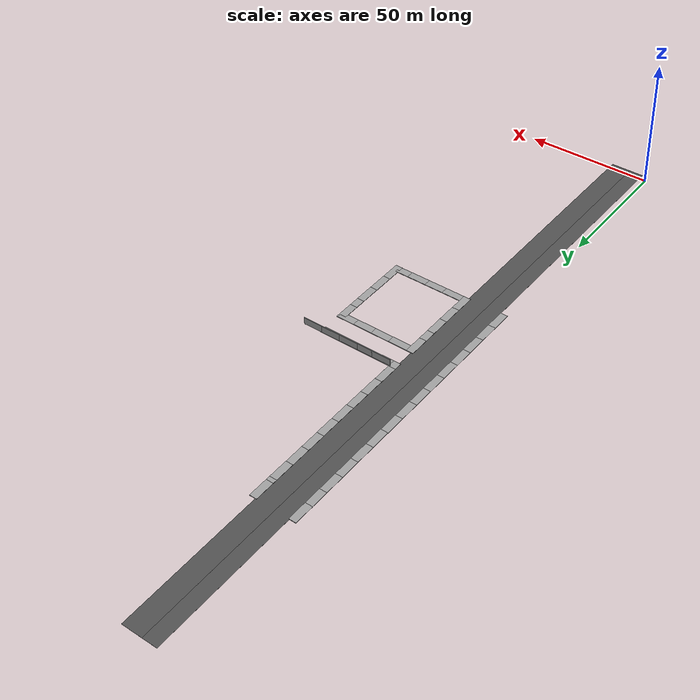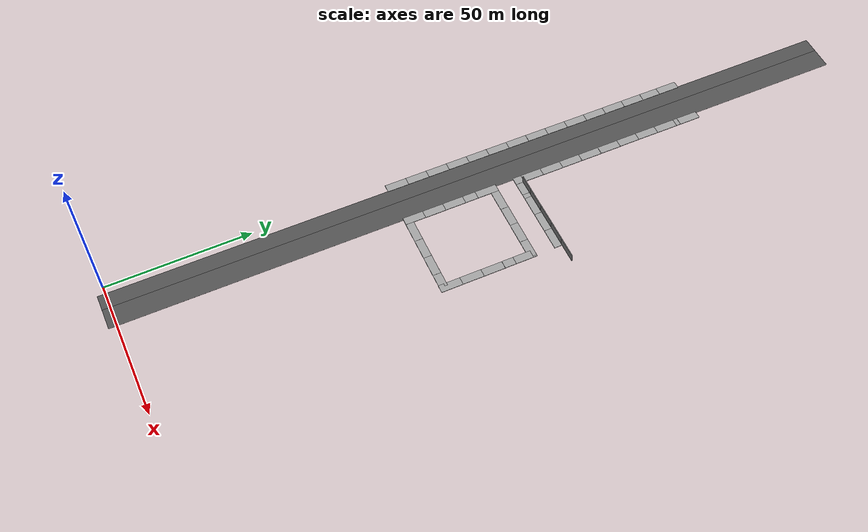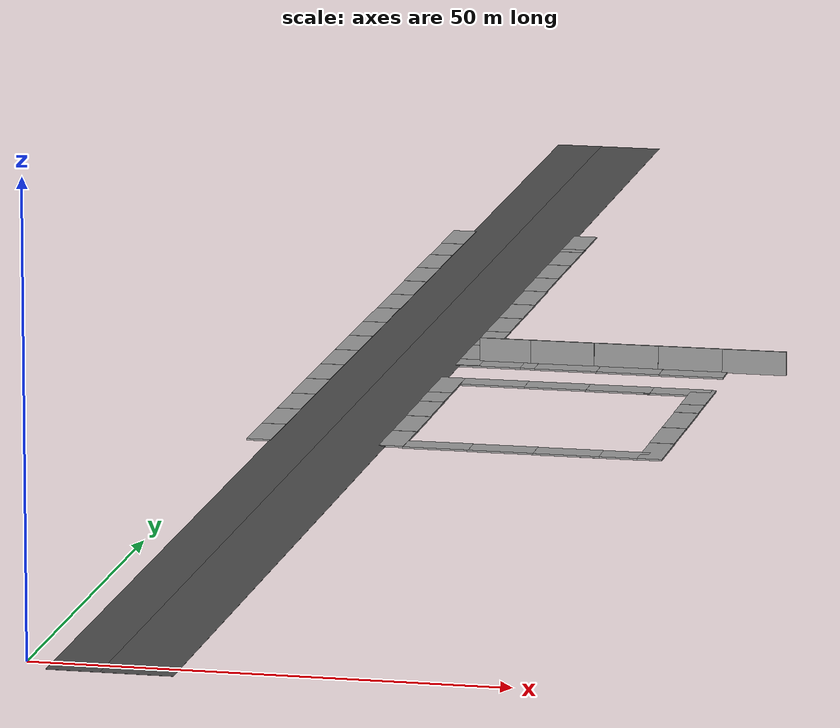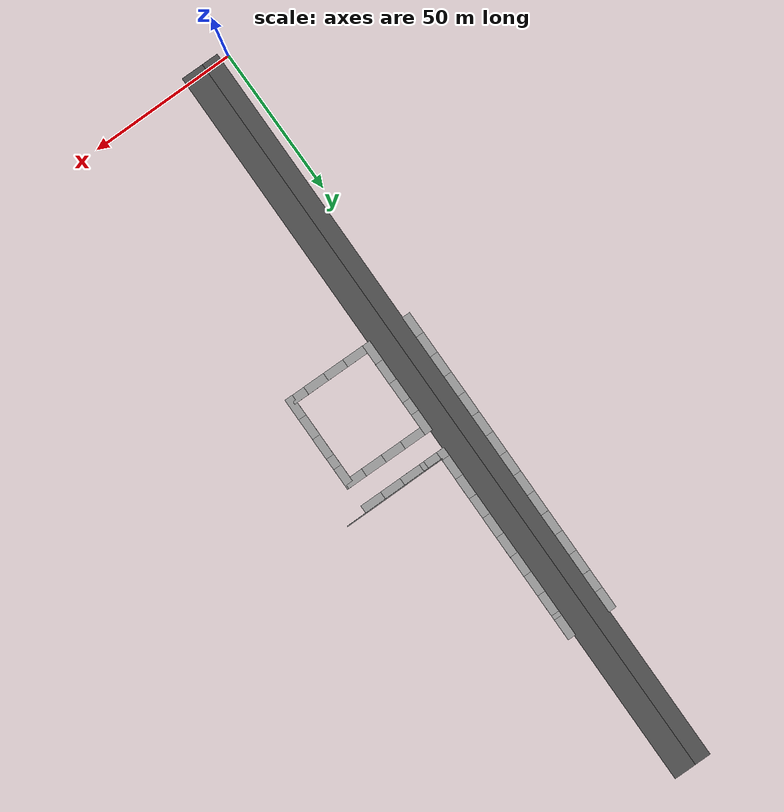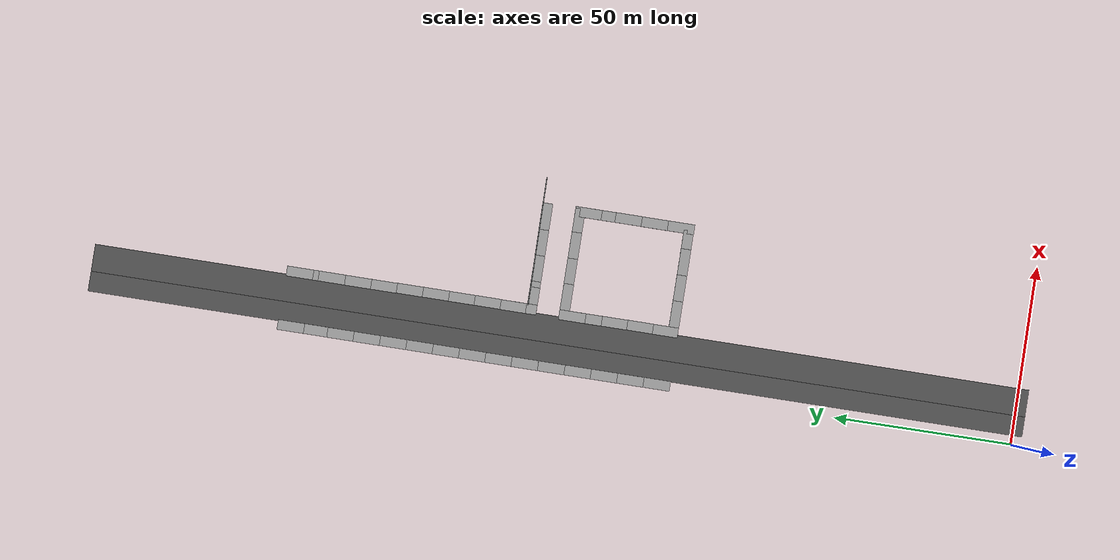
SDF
<sdf version="1.6">
 <world name="default">
  <model name="grey_wall_clone_clone_9_clone_11">
   <static>1</static>
   <link name="link">
    <pose>0 0 1.4 0 -0 0</pose>
    <collision name="collision"><geometry><box><size>7.5 0.2 2.8</size></box></geometry></collision>
    <visual name="visual">
     <cast_shadows>0</cast_shadows>
     <geometry><box><size>7.5 0.2 2.8</size></box></geometry>
     <material>
      <script>
       <uri>model://grey_wall/materials/scripts</uri>
       <uri>model://grey_wall/materials/textures</uri>
       <name>vrc/grey_wall</name>
      </script>
     </material>
    </visual>
   </link>
   <pose>3.34177 100.585 -0.016993 -1.57343 0.001892 1.56332</pose>
  </model>
  <model name="grey_wall_clone_clone_9_clone_12">
   <static>1</static>
   <link name="link">
    <pose>0 0 1.4 0 -0 0</pose>
    <collision name="collision"><geometry><box><size>7.5 0.2 2.8</size></box></geometry></collision>
    <visual name="visual">
     <cast_shadows>0</cast_shadows>
     <geometry><box><size>7.5 0.2 2.8</size></box></geometry>
     <material>
      <script>
       <uri>model://grey_wall/materials/scripts</uri>
       <uri>model://grey_wall/materials/textures</uri>
       <name>vrc/grey_wall</name>
      </script>
     </material>
    </visual>
   </link>
   <pose>3.37904 108.071 -0.016993 -1.57343 0.001892 1.56332</pose>
  </model>
  <model name="grey_wall_clone_clone_9_clone_13">
   <static>1</static>
   <link name="link">
    <pose>0 0 1.4 0 -0 0</pose>
    <collision name="collision"><geometry><box><size>7.5 0.2 2.8</size></box></geometry></collision>
    <visual name="visual">
     <cast_shadows>0</cast_shadows>
     <geometry><box><size>7.5 0.2 2.8</size></box></geometry>
     <material>
      <script>
       <uri>model://grey_wall/materials/scripts</uri>
       <uri>model://grey_wall/materials/textures</uri>
       <name>vrc/grey_wall</name>
      </script>
     </material>
    </visual>
   </link>
   <pose>3.43038 115.536 -0.016993 -1.57343 0.001892 1.56332</pose>
  </model>
  <model name="grey_wall_clone_clone_9_clone_14">
   <static>1</static>
   <link name="link">
    <pose>0 0 1.4 0 -0 0</pose>
    <collision name="collision"><geometry><box><size>7.5 0.2 2.8</size></box></geometry></collision>
    <visual name="visual">
     <cast_shadows>0</cast_shadows>
     <geometry><box><size>7.5 0.2 2.8</size></box></geometry>
     <material>
      <script>
       <uri>model://grey_wall/materials/scripts</uri>
       <uri>model://grey_wall/materials/textures</uri>
       <name>vrc/grey_wall</name>
      </script>
     </material>
    </visual>
   </link>
   <pose>3.47192 123.01 -0.016993 -1.57343 0.001892 1.56332</pose>
  </model>
  <model name="grey_wall_clone_clone_9_clone_15">
   <static>1</static>
   <link name="link">
    <pose>0 0 1.4 0 -0 0</pose>
    <collision name="collision"><geometry><box><size>7.5 0.2 2.8</size></box></geometry></collision>
    <visual name="visual">
     <cast_shadows>0</cast_shadows>
     <geometry><box><size>7.5 0.2 2.8</size></box></geometry>
     <material>
      <script>
       <uri>model://grey_wall/materials/scripts</uri>
       <uri>model://grey_wall/materials/textures</uri>
       <name>vrc/grey_wall</name>
      </script>
     </material>
    </visual>
   </link>
   <pose>3.51541 130.459 -0.016993 -1.57343 0.001892 1.56332</pose>
  </model>
  <model name="grey_wall_clone_clone_9_clone_16">
   <static>1</static>
   <link name="link">
    <pose>0 0 1.4 0 -0 0</pose>
    <collision name="collision"><geometry><box><size>7.5 0.2 2.8</size></box></geometry></collision>
    <visual name="visual">
     <cast_shadows>0</cast_shadows>
     <geometry><box><size>7.5 0.2 2.8</size></box></geometry>
     <material>
      <script>
       <uri>model://grey_wall/materials/scripts</uri>
       <uri>model://grey_wall/materials/textures</uri>
       <name>vrc/grey_wall</name>
      </script>
     </material>
    </visual>
   </link>
   <pose>3.58315 137.961 -0.016993 -1.57343 0.001892 1.56332</pose>
  </model>
  <model name="grey_wall_clone_clone_9_clone_17">
   <static>1</static>
   <link name="link">
    <pose>0 0 1.4 0 -0 0</pose>
    <collision name="collision"><geometry><box><size>7.5 0.2 2.8</size></box></geometry></collision>
    <visual name="visual">
     <cast_shadows>0</cast_shadows>
     <geometry><box><size>7.5 0.2 2.8</size></box></geometry>
     <material>
      <script>
       <uri>model://grey_wall/materials/scripts</uri>
       <uri>model://grey_wall/materials/textures</uri>
       <name>vrc/grey_wall</name>
      </script>
     </material>
    </visual>
   </link>
   <pose>3.64485 145.448 -0.016993 -1.57343 0.001892 1.56332</pose>
  </model>
  <model name="grey_wall_clone_clone_9_clone_18">
   <static>1</static>
   <link name="link">
    <pose>0 0 1.4 0 -0 0</pose>
    <collision name="collision"><geometry><box><size>7.5 0.2 2.8</size></box></geometry></collision>
    <visual name="visual">
     <cast_shadows>0</cast_shadows>
     <geometry><box><size>7.5 0.2 2.8</size></box></geometry>
     <material>
      <script>
       <uri>model://grey_wall/materials/scripts</uri>
       <uri>model://grey_wall/materials/textures</uri>
       <name>vrc/grey_wall</name>
      </script>
     </material>
    </visual>
   </link>
   <pose>3.71423 152.905 -0.016993 -1.57343 0.001892 1.56332</pose>
  </model>
  <model name="grey_wall_clone_clone_9_clone_19">
   <static>1</static>
   <link name="link">
    <pose>0 0 1.4 0 -0 0</pose>
    <collision name="collision"><geometry><box><size>7.5 0.2 2.8</size></box></geometry></collision>
    <visual name="visual">
     <cast_shadows>0</cast_shadows>
     <geometry><box><size>7.5 0.2 2.8</size></box></geometry>
     <material>
      <script>
       <uri>model://grey_wall/materials/scripts</uri>
       <uri>model://grey_wall/materials/textures</uri>
       <name>vrc/grey_wall</name>
      </script>
     </material>
    </visual>
   </link>
   <pose>3.78725 160.34 -0.016993 -1.57343 0.001892 1.56332</pose>
  </model>
  <model name="grey_wall_clone_clone_9_clone_20">
   <static>1</static>
   <link name="link">
    <pose>0 0 1.4 0 -0 0</pose>
    <collision name="collision"><geometry><box><size>7.5 0.2 2.8</size></box></geometry></collision>
    <visual name="visual">
     <cast_shadows>0</cast_shadows>
     <geometry><box><size>7.5 0.2 2.8</size></box></geometry>
     <material>
      <script>
       <uri>model://grey_wall/materials/scripts</uri>
       <uri>model://grey_wall/materials/textures</uri>
       <name>vrc/grey_wall</name>
      </script>
     </material>
    </visual>
   </link>
   <pose>3.87527 167.804 -0.016993 -1.57343 0.001892 1.56332</pose>
  </model>
  <model name="grey_wall_clone_clone_9_clone_21">
   <static>1</static>
   <link name="link">
    <pose>0 0 1.4 0 -0 0</pose>
    <collision name="collision"><geometry><box><size>7.5 0.2 2.8</size></box></geometry></collision>
    <visual name="visual">
     <cast_shadows>0</cast_shadows>
     <geometry><box><size>7.5 0.2 2.8</size></box></geometry>
     <material>
      <script>
       <uri>model://grey_wall/materials/scripts</uri>
       <uri>model://grey_wall/materials/textures</uri>
       <name>vrc/grey_wall</name>
      </script>
     </material>
    </visual>
   </link>
   <pose>3.93042 175.282 -0.016993 -1.57343 0.001892 1.56332</pose>
  </model>
  <model name="grey_wall_clone_clone_9_clone_22">
   <static>1</static>
   <link name="link">
    <pose>0 0 1.4 0 -0 0</pose>
    <collision name="collision"><geometry><box><size>7.5 0.2 2.8</size></box></geometry></collision>
    <visual name="visual">
     <cast_shadows>0</cast_shadows>
     <geometry><box><size>7.5 0.2 2.8</size></box></geometry>
     <material>
      <script>
       <uri>model://grey_wall/materials/scripts</uri>
       <uri>model://grey_wall/materials/textures</uri>
       <name>vrc/grey_wall</name>
      </script>
     </material>
    </visual>
   </link>
   <pose>3.96067 182.755 -0.016993 -1.57343 0.001892 1.56332</pose>
  </model>
  <model name="grey_wall_clone_clone_9_clone_23">
   <static>1</static>
   <link name="link">
    <pose>0 0 1.4 0 -0 0</pose>
    <collision name="collision"><geometry><box><size>7.5 0.2 2.8</size></box></geometry></collision>
    <visual name="visual">
     <cast_shadows>0</cast_shadows>
     <geometry><box><size>7.5 0.2 2.8</size></box></geometry>
     <material>
      <script>
       <uri>model://grey_wall/materials/scripts</uri>
       <uri>model://grey_wall/materials/textures</uri>
       <name>vrc/grey_wall</name>
      </script>
     </material>
    </visual>
   </link>
   <pose>4.02602 190.245 -0.016993 -1.57343 0.001892 1.56332</pose>
  </model>
  <model name="grey_wall_clone_clone_9_clone_24">
   <static>1</static>
   <link name="link">
    <pose>0 0 1.4 0 -0 0</pose>
    <collision name="collision"><geometry><box><size>7.5 0.2 2.8</size></box></geometry></collision>
    <visual name="visual">
     <cast_shadows>0</cast_shadows>
     <geometry><box><size>7.5 0.2 2.8</size></box></geometry>
     <material>
      <script>
       <uri>model://grey_wall/materials/scripts</uri>
       <uri>model://grey_wall/materials/textures</uri>
       <name>vrc/grey_wall</name>
      </script>
     </material>
    </visual>
   </link>
   <pose>4.10089 197.661 -0.016993 -1.57343 0.001892 1.56332</pose>
  </model>
  <model name="grey_wall_clone_clone_9_clone_25">
   <static>1</static>
   <link name="link">
    <pose>0 0 1.4 0 -0 0</pose>
    <collision name="collision"><geometry><box><size>7.5 0.2 2.8</size></box></geometry></collision>
    <visual name="visual">
     <cast_shadows>0</cast_shadows>
     <geometry><box><size>7.5 0.2 2.8</size></box></geometry>
     <material>
      <script>
       <uri>model://grey_wall/materials/scripts</uri>
       <uri>model://grey_wall/materials/textures</uri>
       <name>vrc/grey_wall</name>
      </script>
     </material>
    </visual>
   </link>
   <pose>4.13179 204.265 -0.016993 -1.57343 0.001892 1.56332</pose>
  </model>
  <model name="grey_wall_clone_clone_9_clone_26_clone_0_clone_2_clone_4_clone_2_clone">
   <static>1</static>
   <link name="link">
    <pose>0 0 1.4 0 -0 0</pose>
    <collision name="collision"><geometry><box><size>7.5 0.2 2.8</size></box></geometry></collision>
    <visual name="visual">
     <cast_shadows>0</cast_shadows>
     <geometry><box><size>7.5 0.2 2.8</size></box></geometry>
     <material>
      <script>
       <uri>model://grey_wall/materials/scripts</uri>
       <uri>model://grey_wall/materials/textures</uri>
       <name>vrc/grey_wall</name>
      </script>
     </material>
    </visual>
   </link>
   <pose>18.4366 100.578 -0.01749 -1.57343 0.001892 1.56332</pose>
  </model>
  <model name="grey_wall_clone_clone_9_clone_26_clone_0_clone_2_clone_4_clone_2_clone_0">
   <static>1</static>
   <link name="link">
    <pose>0 0 1.4 0 -0 0</pose>
    <collision name="collision"><geometry><box><size>7.5 0.2 2.8</size></box></geometry></collision>
    <visual name="visual">
     <cast_shadows>0</cast_shadows>
     <geometry><box><size>7.5 0.2 2.8</size></box></geometry>
     <material>
      <script>
       <uri>model://grey_wall/materials/scripts</uri>
       <uri>model://grey_wall/materials/textures</uri>
       <name>vrc/grey_wall</name>
      </script>
     </material>
    </visual>
   </link>
   <pose>18.5191 107.656 -0.017166 -1.57343 0.001892 1.56332</pose>
  </model>
  <model name="grey_wall_clone_clone_9_clone_26_clone_0_clone_2_clone_4_clone_2_clone_1">
   <static>1</static>
   <link name="link">
    <pose>0 0 1.4 0 -0 0</pose>
    <collision name="collision"><geometry><box><size>7.5 0.2 2.8</size></box></geometry></collision>
    <visual name="visual">
     <cast_shadows>0</cast_shadows>
     <geometry><box><size>7.5 0.2 2.8</size></box></geometry>
     <material>
      <script>
       <uri>model://grey_wall/materials/scripts</uri>
       <uri>model://grey_wall/materials/textures</uri>
       <name>vrc/grey_wall</name>
      </script>
     </material>
    </visual>
   </link>
   <pose>18.5349 114.948 -0.017166 -1.57343 0.001892 1.56332</pose>
  </model>
  <model name="grey_wall_clone_clone_9_clone_26_clone_0_clone_2_clone_4_clone_2_clone_2">
   <static>1</static>
   <link name="link">
    <pose>0 0 1.4 0 -0 0</pose>
    <collision name="collision"><geometry><box><size>7.5 0.2 2.8</size></box></geometry></collision>
    <visual name="visual">
     <cast_shadows>0</cast_shadows>
     <geometry><box><size>7.5 0.2 2.8</size></box></geometry>
     <material>
      <script>
       <uri>model://grey_wall/materials/scripts</uri>
       <uri>model://grey_wall/materials/textures</uri>
       <name>vrc/grey_wall</name>
      </script>
     </material>
    </visual>
   </link>
   <pose>18.5576 122.15 -0.017166 -1.57343 0.001892 1.56332</pose>
  </model>
  <model name="grey_wall_clone_clone_9_clone_26_clone_0_clone_2_clone_4_clone_2_clone_3">
   <static>1</static>
   <link name="link">
    <pose>0 0 1.4 0 -0 0</pose>
    <collision name="collision"><geometry><box><size>7.5 0.2 2.8</size></box></geometry></collision>
    <visual name="visual">
     <cast_shadows>0</cast_shadows>
     <geometry><box><size>7.5 0.2 2.8</size></box></geometry>
     <material>
      <script>
       <uri>model://grey_wall/materials/scripts</uri>
       <uri>model://grey_wall/materials/textures</uri>
       <name>vrc/grey_wall</name>
      </script>
     </material>
    </visual>
   </link>
   <pose>18.5846 126.764 -0.017166 -1.57343 0.001892 1.56332</pose>
  </model>
  <model name="grey_wall_clone_clone_9_clone_26_clone_0_clone_2_clone_4_clone_2_clone_4">
   <static>1</static>
   <link name="link">
    <pose>0 0 1.4 0 -0 0</pose>
    <collision name="collision"><geometry><box><size>7.5 0.2 2.8</size></box></geometry></collision>
    <visual name="visual">
     <cast_shadows>0</cast_shadows>
     <geometry><box><size>7.5 0.2 2.8</size></box></geometry>
     <material>
      <script>
       <uri>model://grey_wall/materials/scripts</uri>
       <uri>model://grey_wall/materials/textures</uri>
       <name>vrc/grey_wall</name>
      </script>
     </material>
    </visual>
   </link>
   <pose>47.6978 100.297 -0.017166 -1.57343 0.001892 1.56332</pose>
  </model>
  <model name="grey_wall_clone_clone_9_clone_26_clone_0_clone_2_clone_4_clone_2_clone_5">
   <static>1</static>
   <link name="link">
    <pose>0 0 1.4 0 -0 0</pose>
    <collision name="collision"><geometry><box><size>7.5 0.2 2.8</size></box></geometry></collision>
    <visual name="visual">
     <cast_shadows>0</cast_shadows>
     <geometry><box><size>7.5 0.2 2.8</size></box></geometry>
     <material>
      <script>
       <uri>model://grey_wall/materials/scripts</uri>
       <uri>model://grey_wall/materials/textures</uri>
       <name>vrc/grey_wall</name>
      </script>
     </material>
    </visual>
   </link>
   <pose>47.7384 107.785 -0.017166 -1.57343 0.001892 1.56332</pose>
  </model>
  <model name="grey_wall_clone_clone_9_clone_26_clone_0_clone_2_clone_4_clone_2_clone_6">
   <static>1</static>
   <link name="link">
    <pose>0 0 1.4 0 -0 0</pose>
    <collision name="collision"><geometry><box><size>7.5 0.2 2.8</size></box></geometry></collision>
    <visual name="visual">
     <cast_shadows>0</cast_shadows>
     <geometry><box><size>7.5 0.2 2.8</size></box></geometry>
     <material>
      <script>
       <uri>model://grey_wall/materials/scripts</uri>
       <uri>model://grey_wall/materials/textures</uri>
       <name>vrc/grey_wall</name>
      </script>
     </material>
    </visual>
   </link>
   <pose>47.8198 115.202 -0.017166 -1.57343 0.001892 1.56332</pose>
  </model>
  <model name="grey_wall_clone_clone_9_clone_26_clone_0_clone_2_clone_4_clone_2_clone_7">
   <static>1</static>
   <link name="link">
    <pose>0 0 1.4 0 -0 0</pose>
    <collision name="collision"><geometry><box><size>7.5 0.2 2.8</size></box></geometry></collision>
    <visual name="visual">
     <cast_shadows>0</cast_shadows>
     <geometry><box><size>7.5 0.2 2.8</size></box></geometry>
     <material>
      <script>
       <uri>model://grey_wall/materials/scripts</uri>
       <uri>model://grey_wall/materials/textures</uri>
       <name>vrc/grey_wall</name>
      </script>
     </material>
    </visual>
   </link>
   <pose>47.8441 122.649 -0.017166 -1.57343 0.001892 1.56332</pose>
  </model>
  <model name="grey_wall_clone_clone_9_clone_26_clone_0_clone_2_clone_4_clone_2_clone_8">
   <static>1</static>
   <link name="link">
    <pose>0 0 1.4 0 -0 0</pose>
    <collision name="collision"><geometry><box><size>7.5 0.2 2.8</size></box></geometry></collision>
    <visual name="visual">
     <cast_shadows>0</cast_shadows>
     <geometry><box><size>7.5 0.2 2.8</size></box></geometry>
     <material>
      <script>
       <uri>model://grey_wall/materials/scripts</uri>
       <uri>model://grey_wall/materials/textures</uri>
       <name>vrc/grey_wall</name>
      </script>
     </material>
    </visual>
   </link>
   <pose>47.8666 126.583 -0.017306 -1.57343 0.001892 1.56332</pose>
  </model>
  <model name="grey_wall_clone_clone_10_clone_20">
   <static>1</static>
   <link name="link">
    <pose>0 0 1.4 0 -0 0</pose>
    <collision name="collision"><geometry><box><size>7.5 0.2 2.8</size></box></geometry></collision>
    <visual name="visual">
     <cast_shadows>0</cast_shadows>
     <geometry><box><size>7.5 0.2 2.8</size></box></geometry>
     <material>
      <script>
       <uri>model://grey_wall/materials/scripts</uri>
       <uri>model://grey_wall/materials/textures</uri>
       <name>vrc/grey_wall</name>
      </script>
     </material>
    </visual>
   </link>
   <pose>22.069 99.5716 -0.013396 -1.5862 0.002658 3.13547</pose>
  </model>
  <model name="grey_wall_clone_clone_10_clone_21">
   <static>1</static>
   <link name="link">
    <pose>0 0 1.4 0 -0 0</pose>
    <collision name="collision"><geometry><box><size>7.5 0.2 2.8</size></box></geometry></collision>
    <visual name="visual">
     <cast_shadows>0</cast_shadows>
     <geometry><box><size>7.5 0.2 2.8</size></box></geometry>
     <material>
      <script>
       <uri>model://grey_wall/materials/scripts</uri>
       <uri>model://grey_wall/materials/textures</uri>
       <name>vrc/grey_wall</name>
      </script>
     </material>
    </visual>
   </link>
   <pose>29.4073 99.5164 -0.013396 -1.5862 0.002658 3.13547</pose>
  </model>
  <model name="grey_wall_clone_clone_10_clone_22">
   <static>1</static>
   <link name="link">
    <pose>0 0 1.4 0 -0 0</pose>
    <collision name="collision"><geometry><box><size>7.5 0.2 2.8</size></box></geometry></collision>
    <visual name="visual">
     <cast_shadows>0</cast_shadows>
     <geometry><box><size>7.5 0.2 2.8</size></box></geometry>
     <material>
      <script>
       <uri>model://grey_wall/materials/scripts</uri>
       <uri>model://grey_wall/materials/textures</uri>
       <name>vrc/grey_wall</name>
      </script>
     </material>
    </visual>
   </link>
   <pose>36.8354 99.458 -0.013396 -1.5862 0.002658 3.13547</pose>
  </model>
  <model name="grey_wall_clone_clone_10_clone_23">
   <static>1</static>
   <link name="link">
    <pose>0 0 1.4 0 -0 0</pose>
    <collision name="collision"><geometry><box><size>7.5 0.2 2.8</size></box></geometry></collision>
    <visual name="visual">
     <cast_shadows>0</cast_shadows>
     <geometry><box><size>7.5 0.2 2.8</size></box></geometry>
     <material>
      <script>
       <uri>model://grey_wall/materials/scripts</uri>
       <uri>model://grey_wall/materials/textures</uri>
       <name>vrc/grey_wall</name>
      </script>
     </material>
    </visual>
   </link>
   <pose>42.1129 99.4479 -0.013396 -1.5862 0.002658 3.13547</pose>
  </model>
  <model name="grey_wall_clone_clone_10_clone_24">
   <static>1</static>
   <link name="link">
    <pose>0 0 1.4 0 -0 0</pose>
    <collision name="collision"><geometry><box><size>7.5 0.2 2.8</size></box></geometry></collision>
    <visual name="visual">
     <cast_shadows>0</cast_shadows>
     <geometry><box><size>7.5 0.2 2.8</size></box></geometry>
     <material>
      <script>
       <uri>model://grey_wall/materials/scripts</uri>
       <uri>model://grey_wall/materials/textures</uri>
       <name>vrc/grey_wall</name>
      </script>
     </material>
    </visual>
   </link>
   <pose>22.3013 130.476 -0.013396 -1.5862 0.002658 3.13547</pose>
  </model>
  <model name="grey_wall_clone_clone_10_clone_25">
   <static>1</static>
   <link name="link">
    <pose>0 0 1.4 0 -0 0</pose>
    <collision name="collision"><geometry><box><size>7.5 0.2 2.8</size></box></geometry></collision>
    <visual name="visual">
     <cast_shadows>0</cast_shadows>
     <geometry><box><size>7.5 0.2 2.8</size></box></geometry>
     <material>
      <script>
       <uri>model://grey_wall/materials/scripts</uri>
       <uri>model://grey_wall/materials/textures</uri>
       <name>vrc/grey_wall</name>
      </script>
     </material>
    </visual>
   </link>
   <pose>29.496 130.457 -0.013396 -1.5862 0.002658 3.13547</pose>
  </model>
  <model name="grey_wall_clone_clone_10_clone_26">
   <static>1</static>
   <link name="link">
    <pose>0 0 1.4 0 -0 0</pose>
    <collision name="collision"><geometry><box><size>7.5 0.2 2.8</size></box></geometry></collision>
    <visual name="visual">
     <cast_shadows>0</cast_shadows>
     <geometry><box><size>7.5 0.2 2.8</size></box></geometry>
     <material>
      <script>
       <uri>model://grey_wall/materials/scripts</uri>
       <uri>model://grey_wall/materials/textures</uri>
       <name>vrc/grey_wall</name>
      </script>
     </material>
    </visual>
   </link>
   <pose>36.9355 130.39 -0.011971 -1.5862 0.002658 3.13547</pose>
  </model>
  <model name="grey_wall_clone_clone_10_clone_27">
   <static>1</static>
   <link name="link">
    <pose>0 0 1.4 0 -0 0</pose>
    <collision name="collision"><geometry><box><size>7.5 0.2 2.8</size></box></geometry></collision>
    <visual name="visual">
     <cast_shadows>0</cast_shadows>
     <geometry><box><size>7.5 0.2 2.8</size></box></geometry>
     <material>
      <script>
       <uri>model://grey_wall/materials/scripts</uri>
       <uri>model://grey_wall/materials/textures</uri>
       <name>vrc/grey_wall</name>
      </script>
     </material>
    </visual>
   </link>
   <pose>43.6773 130.349 -0.012283 -1.5862 0.002658 3.13547</pose>
  </model>
  <model name="grey_wall_clone_clone_10_clone_23_clone_clone_5_clone_10">
   <static>1</static>
   <link name="link">
    <pose>0 0 1.4 0 -0 0</pose>
    <collision name="collision"><geometry><box><size>7.5 0.2 2.8</size></box></geometry></collision>
    <visual name="visual">
     <cast_shadows>0</cast_shadows>
     <geometry><box><size>7.5 0.2 2.8</size></box></geometry>
     <material>
      <script>
       <uri>model://grey_wall/materials/scripts</uri>
       <uri>model://grey_wall/materials/textures</uri>
       <name>vrc/grey_wall</name>
      </script>
     </material>
    </visual>
   </link>
   <pose>43.7993 139.599 -0.015997 -1.5862 0.002658 3.13547</pose>
  </model>
  <model name="grey_wall_clone_clone_10_clone_23_clone_clone_5_clone_11">
   <static>1</static>
   <link name="link">
    <pose>0 0 1.4 0 -0 0</pose>
    <collision name="collision"><geometry><box><size>7.5 0.2 2.8</size></box></geometry></collision>
    <visual name="visual">
     <cast_shadows>0</cast_shadows>
     <geometry><box><size>7.5 0.2 2.8</size></box></geometry>
     <material>
      <script>
       <uri>model://grey_wall/materials/scripts</uri>
       <uri>model://grey_wall/materials/textures</uri>
       <name>vrc/grey_wall</name>
      </script>
     </material>
    </visual>
   </link>
   <pose>36.2944 139.634 -0.015903 -1.5862 0.002658 3.13547</pose>
  </model>
  <model name="grey_wall_clone_clone_10_clone_23_clone_clone_5_clone_12">
   <static>1</static>
   <link name="link">
    <pose>0 0 1.4 0 -0 0</pose>
    <collision name="collision"><geometry><box><size>7.5 0.2 2.8</size></box></geometry></collision>
    <visual name="visual">
     <cast_shadows>0</cast_shadows>
     <geometry><box><size>7.5 0.2 2.8</size></box></geometry>
     <material>
      <script>
       <uri>model://grey_wall/materials/scripts</uri>
       <uri>model://grey_wall/materials/textures</uri>
       <name>vrc/grey_wall</name>
      </script>
     </material>
    </visual>
   </link>
   <pose>28.9808 139.661 -0.016508 -1.5862 0.002658 3.13547</pose>
  </model>
  <model name="grey_wall_clone_clone_10_clone_23_clone_clone_5_clone_13">
   <static>1</static>
   <link name="link">
    <pose>0 0 1.4 0 -0 0</pose>
    <collision name="collision"><geometry><box><size>7.5 0.2 2.8</size></box></geometry></collision>
    <visual name="visual">
     <cast_shadows>0</cast_shadows>
     <geometry><box><size>7.5 0.2 2.8</size></box></geometry>
     <material>
      <script>
       <uri>model://grey_wall/materials/scripts</uri>
       <uri>model://grey_wall/materials/textures</uri>
       <name>vrc/grey_wall</name>
      </script>
     </material>
    </visual>
   </link>
   <pose>21.6649 139.705 -0.017362 -1.5862 0.002658 3.13547</pose>
  </model>
  <model name="grey_wall_clone_clone_10_clone_23_clone_clone_5_clone_14">
   <static>1</static>
   <link name="link">
    <pose>0 0 1.4 0 -0 0</pose>
    <collision name="collision"><geometry><box><size>7.5 0.2 2.8</size></box></geometry></collision>
    <visual name="visual">
     <cast_shadows>0</cast_shadows>
     <geometry><box><size>7.5 0.2 2.8</size></box></geometry>
     <material>
      <script>
       <uri>model://grey_wall/materials/scripts</uri>
       <uri>model://grey_wall/materials/textures</uri>
       <name>vrc/grey_wall</name>
      </script>
     </material>
    </visual>
   </link>
   <pose>19.9904 139.683 -0.018468 -1.5862 0.002658 3.13547</pose>
  </model>
  <model name="grey_wall_clone_clone_9_clone_22_clone">
   <static>1</static>
   <link name="link">
    <pose>0 0 1.4 0 -0 0</pose>
    <collision name="collision"><geometry><box><size>7.5 0.2 2.8</size></box></geometry></collision>
    <visual name="visual">
     <cast_shadows>0</cast_shadows>
     <geometry><box><size>7.5 0.2 2.8</size></box></geometry>
     <material>
      <script>
       <uri>model://grey_wall/materials/scripts</uri>
       <uri>model://grey_wall/materials/textures</uri>
       <name>vrc/grey_wall</name>
      </script>
     </material>
    </visual>
   </link>
   <pose>18.9223 143.657 -0.017317 -1.57343 0.001892 1.56332</pose>
  </model>
  <model name="grey_wall_clone_clone_9_clone_22_clone_0">
   <static>1</static>
   <link name="link">
    <pose>0 0 1.4 0 -0 0</pose>
    <collision name="collision"><geometry><box><size>7.5 0.2 2.8</size></box></geometry></collision>
    <visual name="visual">
     <cast_shadows>0</cast_shadows>
     <geometry><box><size>7.5 0.2 2.8</size></box></geometry>
     <material>
      <script>
       <uri>model://grey_wall/materials/scripts</uri>
       <uri>model://grey_wall/materials/textures</uri>
       <name>vrc/grey_wall</name>
      </script>
     </material>
    </visual>
   </link>
   <pose>19.0261 150.863 -0.016993 -1.57343 0.001892 1.56332</pose>
  </model>
  <model name="grey_wall_clone_clone_9_clone_22_clone_1">
   <static>1</static>
   <link name="link">
    <pose>0 0 1.4 0 -0 0</pose>
    <collision name="collision"><geometry><box><size>7.5 0.2 2.8</size></box></geometry></collision>
    <visual name="visual">
     <cast_shadows>0</cast_shadows>
     <geometry><box><size>7.5 0.2 2.8</size></box></geometry>
     <material>
      <script>
       <uri>model://grey_wall/materials/scripts</uri>
       <uri>model://grey_wall/materials/textures</uri>
       <name>vrc/grey_wall</name>
      </script>
     </material>
    </visual>
   </link>
   <pose>19.0669 158.218 -0.016993 -1.57343 0.001892 1.56332</pose>
  </model>
  <model name="grey_wall_clone_clone_9_clone_22_clone_2">
   <static>1</static>
   <link name="link">
    <pose>0 0 1.4 0 -0 0</pose>
    <collision name="collision"><geometry><box><size>7.5 0.2 2.8</size></box></geometry></collision>
    <visual name="visual">
     <cast_shadows>0</cast_shadows>
     <geometry><box><size>7.5 0.2 2.8</size></box></geometry>
     <material>
      <script>
       <uri>model://grey_wall/materials/scripts</uri>
       <uri>model://grey_wall/materials/textures</uri>
       <name>vrc/grey_wall</name>
      </script>
     </material>
    </visual>
   </link>
   <pose>19.1397 165.488 -0.016993 -1.57343 0.001892 1.56332</pose>
  </model>
  <model name="grey_wall_clone_clone_9_clone_22_clone_3">
   <static>1</static>
   <link name="link">
    <pose>0 0 1.4 0 -0 0</pose>
    <collision name="collision"><geometry><box><size>7.5 0.2 2.8</size></box></geometry></collision>
    <visual name="visual">
     <cast_shadows>0</cast_shadows>
     <geometry><box><size>7.5 0.2 2.8</size></box></geometry>
     <material>
      <script>
       <uri>model://grey_wall/materials/scripts</uri>
       <uri>model://grey_wall/materials/textures</uri>
       <name>vrc/grey_wall</name>
      </script>
     </material>
    </visual>
   </link>
   <pose>19.1727 172.888 -0.016993 -1.57343 0.001892 1.56332</pose>
  </model>
  <model name="grey_wall_clone_clone_9_clone_22_clone_4">
   <static>1</static>
   <link name="link">
    <pose>0 0 1.4 0 -0 0</pose>
    <collision name="collision"><geometry><box><size>7.5 0.2 2.8</size></box></geometry></collision>
    <visual name="visual">
     <cast_shadows>0</cast_shadows>
     <geometry><box><size>7.5 0.2 2.8</size></box></geometry>
     <material>
      <script>
       <uri>model://grey_wall/materials/scripts</uri>
       <uri>model://grey_wall/materials/textures</uri>
       <name>vrc/grey_wall</name>
      </script>
     </material>
    </visual>
   </link>
   <pose>19.1633 180.259 -0.016993 -1.57343 0.001892 1.56332</pose>
  </model>
  <model name="grey_wall_clone_clone_9_clone_22_clone_5">
   <static>1</static>
   <link name="link">
    <pose>0 0 1.4 0 -0 0</pose>
    <collision name="collision"><geometry><box><size>7.5 0.2 2.8</size></box></geometry></collision>
    <visual name="visual">
     <cast_shadows>0</cast_shadows>
     <geometry><box><size>7.5 0.2 2.8</size></box></geometry>
     <material>
      <script>
       <uri>model://grey_wall/materials/scripts</uri>
       <uri>model://grey_wall/materials/textures</uri>
       <name>vrc/grey_wall</name>
      </script>
     </material>
    </visual>
   </link>
   <pose>19.205 187.552 -0.016993 -1.57343 0.001892 1.56332</pose>
  </model>
  <model name="grey_wall_clone_clone_9_clone_22_clone_6">
   <static>1</static>
   <link name="link">
    <pose>0 0 1.4 0 -0 0</pose>
    <collision name="collision"><geometry><box><size>7.5 0.2 2.8</size></box></geometry></collision>
    <visual name="visual">
     <cast_shadows>0</cast_shadows>
     <geometry><box><size>7.5 0.2 2.8</size></box></geometry>
     <material>
      <script>
       <uri>model://grey_wall/materials/scripts</uri>
       <uri>model://grey_wall/materials/textures</uri>
       <name>vrc/grey_wall</name>
      </script>
     </material>
    </visual>
   </link>
   <pose>19.2821 194.944 -0.016993 -1.57343 0.001892 1.56332</pose>
  </model>
  <model name="grey_wall_clone_clone_9_clone_22_clone_7">
   <static>1</static>
   <link name="link">
    <pose>0 0 1.4 0 -0 0</pose>
    <collision name="collision"><geometry><box><size>7.5 0.2 2.8</size></box></geometry></collision>
    <visual name="visual">
     <cast_shadows>0</cast_shadows>
     <geometry><box><size>7.5 0.2 2.8</size></box></geometry>
     <material>
      <script>
       <uri>model://grey_wall/materials/scripts</uri>
       <uri>model://grey_wall/materials/textures</uri>
       <name>vrc/grey_wall</name>
      </script>
     </material>
    </visual>
   </link>
   <pose>19.3351 202.428 -0.016993 -1.57343 0.001892 1.56332</pose>
  </model>
  <model name="grey_wall_clone_clone_9_clone_22_clone_8">
   <static>1</static>
   <link name="link">
    <pose>0 0 1.4 0 -0 0</pose>
    <collision name="collision"><geometry><box><size>7.5 0.2 2.8</size></box></geometry></collision>
    <visual name="visual">
     <cast_shadows>0</cast_shadows>
     <geometry><box><size>7.5 0.2 2.8</size></box></geometry>
     <material>
      <script>
       <uri>model://grey_wall/materials/scripts</uri>
       <uri>model://grey_wall/materials/textures</uri>
       <name>vrc/grey_wall</name>
      </script>
     </material>
    </visual>
   </link>
   <pose>19.347 203.977 -0.016993 -1.57343 0.001892 1.56332</pose>
  </model>
  <model name="Road_clone_clone_clone_clone_clone">
   <static>1</static>
   <link name="link_0">
    <inertial>
     <mass>3902.93</mass>
     <inertia><ixx>13288.4</ixx><ixy>0</ixy><ixz>0</ixz><iyy>107351</iyy><iyz>0</iyz><izz>120639</izz></inertia>
    </inertial>
    <gravity>0</gravity>
    <self_collide>1</self_collide>
    <visual name="visual">
     <geometry><box><size>264.598 7.64177 0.01701</size></box></geometry>
     <material>
      <lighting>1</lighting>
      <script><uri>file://media/materials/scripts/gazebo.material</uri><name>Gazebo/Road</name></script>
      <shader type="pixel"><normal_map>__default__</normal_map></shader>
      <ambient>0.1 0.1 0.1 1</ambient>
      <diffuse>0.8 0.8 0.8 1</diffuse>
      <specular>0.01 0.01 0.01 1</specular>
      <emissive>0 0 0 1</emissive>
     </material>
    </visual>
    <collision name="collision">
     <geometry><box><size>264.598 7.64177 0.01701</size></box></geometry>
     <surface>
      <friction>
       <ode><mu>1</mu><mu2>1</mu2><fdir1>0 0 0</fdir1><slip1>0</slip1><slip2>0</slip2></ode>
       <torsional>
        <coefficient>1</coefficient>
        <patch_radius>0</patch_radius>
        <surface_radius>0</surface_radius>
        <use_patch_radius>1</use_patch_radius>
        <ode><slip>0</slip></ode>
       </torsional>
      </friction>
      <bounce><restitution_coefficient>0</restitution_coefficient><threshold>1e+06</threshold></bounce>
      <contact>
       <collide_without_contact>0</collide_without_contact>
       <collide_without_contact_bitmask>1</collide_without_contact_bitmask>
       <collide_bitmask>1</collide_bitmask>
       <ode>
        <soft_cfm>0</soft_cfm>
        <soft_erp>0.2</soft_erp>
        <kp>1e+13</kp>
        <kd>1</kd>
        <max_vel>0.01</max_vel>
        <min_depth>0</min_depth>
       </ode>
       <bullet>
        <split_impulse>1</split_impulse>
        <split_impulse_penetration_threshold>-0.01</split_impulse_penetration_threshold>
        <soft_cfm>0</soft_cfm>
        <soft_erp>0.2</soft_erp>
        <kp>1e+13</kp>
        <kd>1</kd>
       </bullet>
      </contact>
     </surface>
    </collision>
   </link>
   <static>0</static>
   <pose>12.7796 129.606 0 0 -0 1.56485</pose>
  </model>
  <model name="grey_wall_clone_clone_9_clone_22_clone_clone">
   <static>1</static>
   <link name="link">
    <pose>0 0 1.4 0 -0 0</pose>
    <collision name="collision"><geometry><box><size>7.5 0.2 2.8</size></box></geometry></collision>
    <visual name="visual">
     <cast_shadows>0</cast_shadows>
     <geometry><box><size>7.5 0.2 2.8</size></box></geometry>
     <material>
      <script>
       <uri>model://grey_wall/materials/scripts</uri>
       <uri>model://grey_wall/materials/textures</uri>
       <name>vrc/grey_wall</name>
      </script>
     </material>
    </visual>
   </link>
   <pose>18.9137 140.661 -0.017298 -1.57343 0.001892 1.56332</pose>
  </model>
  <model name="Road_clone_clone_clone_clone_clone_clone">
   <static>1</static>
   <link name="link_0">
    <inertial>
     <mass>3902.93</mass>
     <inertia><ixx>13288.4</ixx><ixy>0</ixy><ixz>0</ixz><iyy>107351</iyy><iyz>0</iyz><izz>120639</izz></inertia>
    </inertial>
    <gravity>0</gravity>
    <self_collide>1</self_collide>
    <visual name="visual">
     <geometry><box><size>264.598 5.64755 0.01701</size></box></geometry>
     <material>
      <lighting>1</lighting>
      <script><uri>file://media/materials/scripts/gazebo.material</uri><name>Gazebo/Road</name></script>
      <shader type="pixel"><normal_map>__default__</normal_map></shader>
      <ambient>0.1 0.1 0.1 1</ambient>
      <diffuse>0.8 0.8 0.8 1</diffuse>
      <specular>0.01 0.01 0.01 1</specular>
      <emissive>0 0 0 1</emissive>
     </material>
    </visual>
    <collision name="collision">
     <geometry><box><size>264.598 5.64755 0.01701</size></box></geometry>
     <surface>
      <friction>
       <ode><mu>1</mu><mu2>1</mu2><fdir1>0 0 0</fdir1><slip1>0</slip1><slip2>0</slip2></ode>
       <torsional>
        <coefficient>1</coefficient>
        <patch_radius>0</patch_radius>
        <surface_radius>0</surface_radius>
        <use_patch_radius>1</use_patch_radius>
        <ode><slip>0</slip></ode>
       </torsional>
      </friction>
      <bounce><restitution_coefficient>0</restitution_coefficient><threshold>1e+06</threshold></bounce>
      <contact>
       <collide_without_contact>0</collide_without_contact>
       <collide_without_contact_bitmask>1</collide_without_contact_bitmask>
       <collide_bitmask>1</collide_bitmask>
       <ode>
        <soft_cfm>0</soft_cfm>
        <soft_erp>0.2</soft_erp>
        <kp>1e+13</kp>
        <kd>1</kd>
        <max_vel>0.01</max_vel>
        <min_depth>0</min_depth>
       </ode>
       <bullet>
        <split_impulse>1</split_impulse>
        <split_impulse_penetration_threshold>-0.01</split_impulse_penetration_threshold>
        <soft_cfm>0</soft_cfm>
        <soft_erp>0.2</soft_erp>
        <kp>1e+13</kp>
        <kd>1</kd>
       </bullet>
      </contact>
     </surface>
    </collision>
   </link>
   <static>0</static>
   <pose>6.15981 129.637 0 0 -0 1.56485</pose>
  </model>
  <model name="grey_wall_clone_4">
   <static>1</static>
   <link name="link">
    <pose>0 0 1.4 0 -0 0</pose>
    <collision name="collision"><geometry><box><size>7.5 0.2 2.8</size></box></geometry></collision>
    <visual name="visual">
     <cast_shadows>0</cast_shadows>
     <geometry><box><size>7.5 0.2 2.8</size></box></geometry>
     <material>
      <script>
       <uri>model://grey_wall/materials/scripts</uri>
       <uri>model://grey_wall/materials/textures</uri>
       <name>vrc/grey_wall</name>
      </script>
     </material>
    </visual>
   </link>
   <pose>50.6797 139.502 0 0 -0 0</pose>
  </model>
  <model name="grey_wall_clone_5">
   <static>1</static>
   <link name="link">
    <pose>0 0 1.4 0 -0 0</pose>
    <collision name="collision"><geometry><box><size>7.5 0.2 2.8</size></box></geometry></collision>
    <visual name="visual">
     <cast_shadows>0</cast_shadows>
     <geometry><box><size>7.5 0.2 2.8</size></box></geometry>
     <material>
      <script>
       <uri>model://grey_wall/materials/scripts</uri>
       <uri>model://grey_wall/materials/textures</uri>
       <name>vrc/grey_wall</name>
      </script>
     </material>
    </visual>
   </link>
   <pose>43.1872 139.524 0 0 -0 0</pose>
  </model>
  <model name="grey_wall_clone_6">
   <static>1</static>
   <link name="link">
    <pose>0 0 1.4 0 -0 0</pose>
    <collision name="collision"><geometry><box><size>7.5 0.2 2.8</size></box></geometry></collision>
    <visual name="visual">
     <cast_shadows>0</cast_shadows>
     <geometry><box><size>7.5 0.2 2.8</size></box></geometry>
     <material>
      <script>
       <uri>model://grey_wall/materials/scripts</uri>
       <uri>model://grey_wall/materials/textures</uri>
       <name>vrc/grey_wall</name>
      </script>
     </material>
    </visual>
   </link>
   <pose>35.6965 139.517 0 0 -0 0</pose>
  </model>
  <model name="grey_wall_clone_7">
   <static>1</static>
   <link name="link">
    <pose>0 0 1.4 0 -0 0</pose>
    <collision name="collision"><geometry><box><size>7.5 0.2 2.8</size></box></geometry></collision>
    <visual name="visual">
     <cast_shadows>0</cast_shadows>
     <geometry><box><size>7.5 0.2 2.8</size></box></geometry>
     <material>
      <script>
       <uri>model://grey_wall/materials/scripts</uri>
       <uri>model://grey_wall/materials/textures</uri>
       <name>vrc/grey_wall</name>
      </script>
     </material>
    </visual>
   </link>
   <pose>28.194 139.488 0 0 -0 0</pose>
  </model>
  <model name="grey_wall_clone_8">
   <static>1</static>
   <link name="link">
    <pose>0 0 1.4 0 -0 0</pose>
    <collision name="collision"><geometry><box><size>7.5 0.2 2.8</size></box></geometry></collision>
    <visual name="visual">
     <cast_shadows>0</cast_shadows>
     <geometry><box><size>7.5 0.2 2.8</size></box></geometry>
     <material>
      <script>
       <uri>model://grey_wall/materials/scripts</uri>
       <uri>model://grey_wall/materials/textures</uri>
       <name>vrc/grey_wall</name>
      </script>
     </material>
    </visual>
   </link>
   <pose>22.2506 139.498 0 0 -0 0</pose>
  </model>
 </world>
</sdf>
